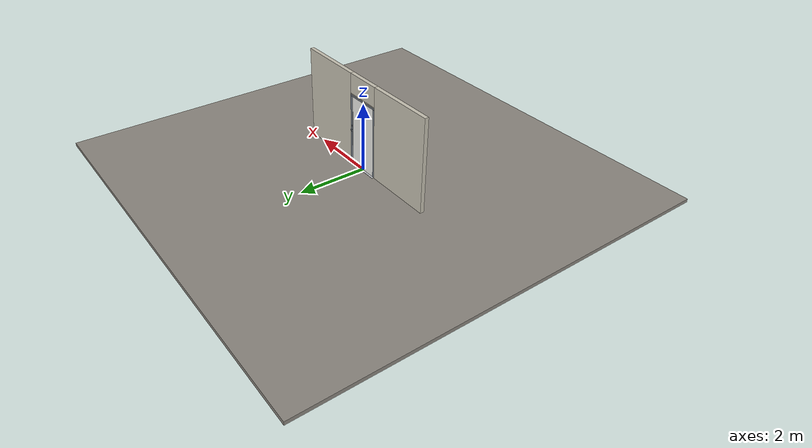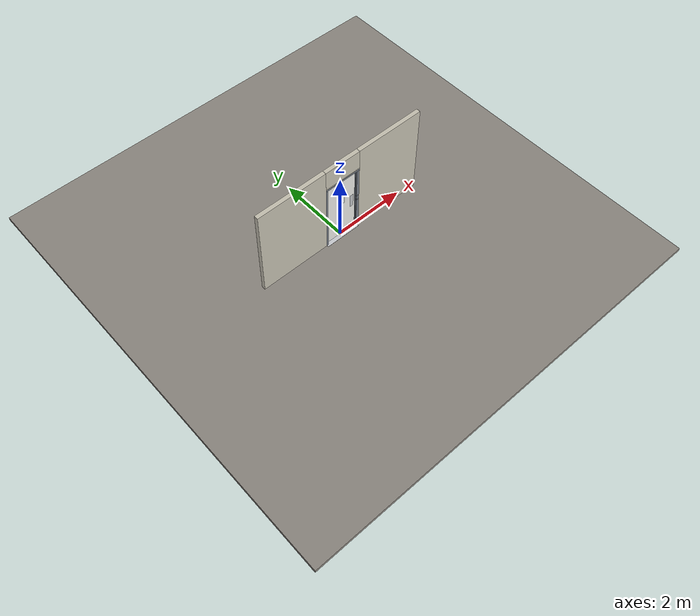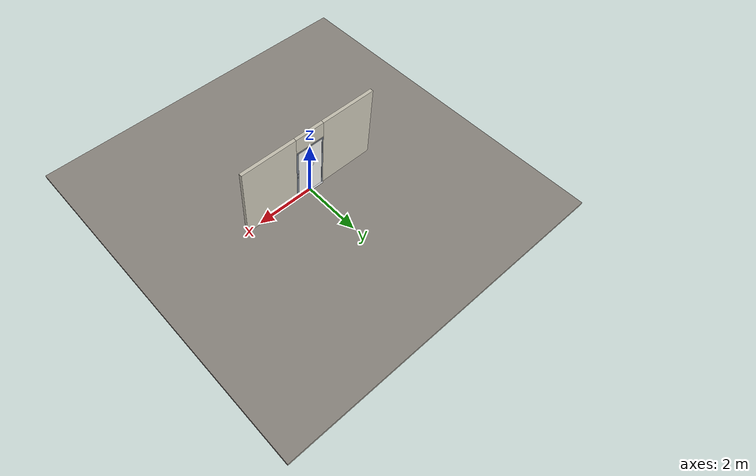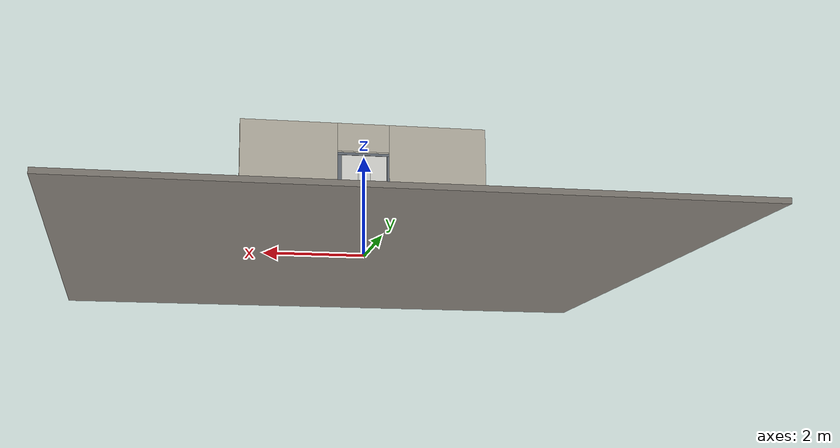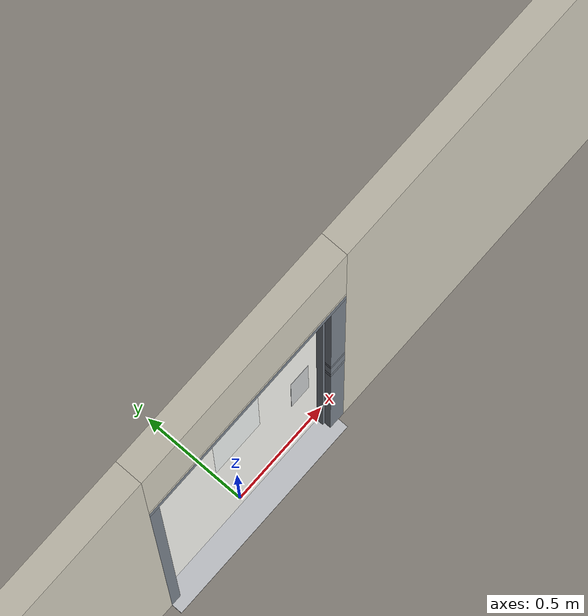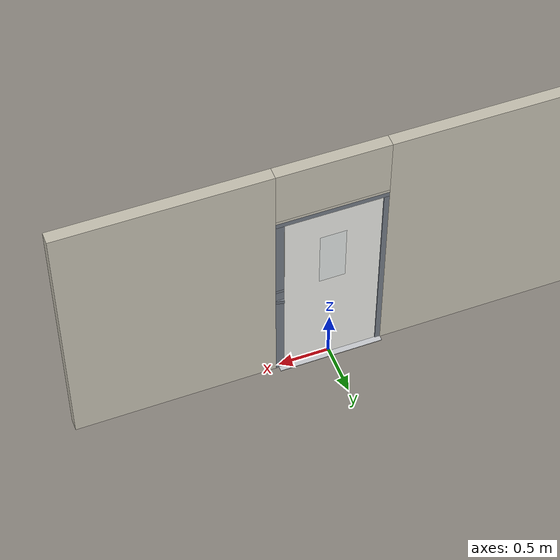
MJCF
<?xml version="1.0" ?>
<mujoco model="db0201_swing_single_minimal">
  <compiler angle="radian" meshdir="../../hardware" texturedir="../../textures" autolimits="true" inertiafromgeom="false"/>
  <option timestep="0.002" integrator="implicitfast" cone="elliptic" impratio="10" noslip_iterations="3">
    <flag multiccd="enable"/>
  </option>
  <size memory="16M"/>
  <default>
    <geom condim="4" solref="0.005 1" solimp="0.95 0.99 0.001"/>
    <joint solreflimit="0.005 1" solimplimit="0.95 0.99 0.001"/>
    <tendon solreflimit="0.005 1"/>
    <equality solref="0.002 1"/>
  </default>
  <visual>
    <headlight ambient="0.4 0.4 0.4" diffuse="0.7 0.7 0.7" specular="0.2 0.2 0.2"/>
    <quality shadowsize="4096"/>
    <map znear="0.01" zfar="60"/>
  </visual>
  <asset>
    <material name="mat_floor" rgba="0.55 0.53 0.5 1" specular="0.2" shininess="0.15" reflectance="0"/>
    <material name="mat_wall" rgba="0.78 0.76 0.7 1" specular="0.2" shininess="0.1" reflectance="0"/>
    <material name="mat_leaf" rgba="0.93 0.93 0.91 1" specular="0.23" shininess="0.6" reflectance="0.02"/>
    <material name="mat_glass" rgba="0.85 0.92 0.95 0.25" specular="0.2" shininess="0.95" reflectance="0.1"/>
    <material name="mat_hinge" rgba="0.65 0.66 0.68 1" specular="0.74" shininess="0.5" reflectance="0.36"/>
    <material name="mat_op_stainless" rgba="0.75 0.76 0.77 1" specular="0.8" shininess="0.65" reflectance="0.4"/>
    <material name="mat_bolt" rgba="0.75 0.76 0.77 1" specular="0.8" shininess="0.65" reflectance="0.4"/>
    <material name="mat_deadbolt" rgba="0.85 0.66 0.3 1" specular="0.8" shininess="0.75" reflectance="0.4"/>
    <material name="mat_frame" rgba="0.45 0.48 0.52 1" specular="0.32" shininess="0.6" reflectance="0.08"/>
    <material name="mat_seal" rgba="0.1 0.1 0.1 1" specular="0.2" shininess="0.1" reflectance="0"/>
    <material name="mat_threshold" rgba="0.8 0.81 0.83 1" specular="0.8" shininess="0.6" reflectance="0.4"/>
    <material name="mat_closer" rgba="0.22 0.17 0.13 1" specular="0.8" shininess="0.6" reflectance="0.4"/>
    <texture name="skybox" type="skybox" builtin="gradient" rgb1="0.6 0.7 0.85" rgb2="0.9 0.92 0.95" width="256" height="256"/>
  </asset>
  <worldbody>
    <light name="sun" pos="1.5 -2.5 4" dir="-0.3 0.5 -0.8" directional="true" diffuse="0.8 0.8 0.8" specular="0.3 0.3 0.3" castshadow="true"/>
    <light name="fill" pos="-1.5 2.5 3" dir="0.3 -0.5 -0.7" directional="true" diffuse="0.35 0.35 0.4" castshadow="false"/>
    <camera name="robot_view" pos="0 -2.570688 1.734312" xyaxes="1 0 0 0 0.26963 0.962964" fovy="52"/>
    <camera name="far_view" pos="0 2.513687 1.734312" xyaxes="-1 0 0 0 -0.26963 0.962964" fovy="52"/>
    <camera name="iso" pos="1.932062 -2.163938 2.141063" xyaxes="0.741536 0.670913 0 -0.242917 0.268487 0.932151" fovy="46"/>
    <camera name="detail_handle" pos="0.5335 -0.8285 1.296" xyaxes="0.97561 0.219512 0 -0.070934 0.315262 0.94635" fovy="38"/>
    <geom name="floor" type="box" size="6 6 0.05" pos="0 0 -0.05" material="mat_floor" group="0" contype="1" conaffinity="1" friction="0.8 0.005 0.0001" density="2400"/>
    <geom name="wall_left" type="box" size="0.99475 0.0575 1.35" pos="-1.50525 -0.0285 1.35" material="mat_wall" group="0" contype="1" conaffinity="1" friction="0.6 0.005 0.0001" density="800"/>
    <geom name="wall_right" type="box" size="0.97975 0.0575 1.35" pos="1.52025 -0.0285 1.35" material="mat_wall" group="0" contype="1" conaffinity="1" friction="0.6 0.005 0.0001" density="800"/>
    <geom name="wall_header" type="box" size="0.5255 0.0575 0.2875" pos="0.015 -0.0285 2.4125" material="mat_wall" group="0" contype="1" conaffinity="1" friction="0.6 0.005 0.0001" density="800"/>
    <geom name="jamb_hinge" type="box" size="0.025 0.0575 1.0225" pos="-0.4855 -0.0285 1.0225" material="mat_frame" group="0" contype="1" conaffinity="1" friction="0.6 0.005 0.0001" density="300"/>
    <geom name="strike_1016_wall_n" type="box" size="0.04 0.03925 0.019" pos="0.5005 -0.04675 1.016" material="mat_frame" group="0" contype="1" conaffinity="1" friction="0.6 0.005 0.0001" density="300"/>
    <geom name="strike_1016_wall_p" type="box" size="0.04 0.008 0.019" pos="0.5005 0.0155 1.016" material="mat_frame" group="0" contype="1" conaffinity="1" friction="0.6 0.005 0.0001" density="300"/>
    <geom name="strike_1016_ramp" type="box" size="0.04 0.015403 0.019" pos="0.502954 0.029411 1.016" quat="0.993439 0 0 -0.114365" material="mat_frame" group="0" contype="1" conaffinity="1" friction="0.12 0.005 0.0001" density="300"/>
    <geom name="strike_1016_ramp_n" type="box" size="0.04 0.015403 0.019" pos="0.502954 -0.017411 1.016" quat="0.993439 0 0 0.114365" material="mat_frame" group="0" contype="1" conaffinity="1" friction="0.12 0.005 0.0001" density="300"/>
    <geom name="strike_1016_back" type="box" size="0.035 0.0075 0.019" pos="0.5055 0 1.016" material="mat_frame" group="0" contype="1" conaffinity="1" friction="0.6 0.005 0.0001" density="300"/>
    <geom name="strike_1156_wall_n" type="box" size="0.04 0.03825 0.0155" pos="0.5005 -0.04775 1.156" material="mat_frame" group="0" contype="1" conaffinity="1" friction="0.6 0.005 0.0001" density="300"/>
    <geom name="strike_1156_wall_p" type="box" size="0.04 0.00975 0.0155" pos="0.5005 0.01925 1.156" material="mat_frame" group="0" contype="1" conaffinity="1" friction="0.6 0.005 0.0001" density="300"/>
    <geom name="strike_1156_back" type="box" size="0.0253 0.0095 0.0155" pos="0.5152 0 1.156" material="mat_frame" group="0" contype="1" conaffinity="1" friction="0.6 0.005 0.0001" density="300"/>
    <geom name="jamb_strike_0" type="box" size="0.04 0.0575 0.4985" pos="0.5005 -0.0285 0.4985" material="mat_frame" group="0" contype="1" conaffinity="1" friction="0.6 0.005 0.0001" density="300"/>
    <geom name="jamb_strike_1" type="box" size="0.04 0.0575 0.05275" pos="0.5005 -0.0285 1.08775" material="mat_frame" group="0" contype="1" conaffinity="1" friction="0.6 0.005 0.0001" density="300"/>
    <geom name="jamb_strike_2" type="box" size="0.04 0.0575 0.43675" pos="0.5005 -0.0285 1.60825" material="mat_frame" group="0" contype="1" conaffinity="1" friction="0.6 0.005 0.0001" density="300"/>
    <geom name="jamb_head" type="box" size="0.5255 0.0575 0.025" pos="0.015 -0.0285 2.07" material="mat_frame" group="0" contype="1" conaffinity="1" friction="0.6 0.005 0.0001" density="300"/>
    <geom name="head_stud" type="box" size="0.5255 0.0575 0.015" pos="0.015 -0.0285 2.11" material="mat_wall" group="0" contype="1" conaffinity="1" friction="0.6 0.005 0.0001" density="500"/>
    <geom name="stop_hinge" type="box" size="0.0055 0.016 1.0225" pos="-0.455 -0.0385 1.0225" material="mat_frame" group="0" contype="1" conaffinity="1" friction="0.6 0.005 0.0001" density="300"/>
    <geom name="stop_strike" type="box" size="0.0055 0.016 1.0225" pos="0.455 -0.0385 1.0225" material="mat_frame" group="0" contype="1" conaffinity="1" friction="0.6 0.005 0.0001" density="300"/>
    <geom name="stop_head" type="box" size="0.4605 0.016 0.0055" pos="0 -0.0385 2.0395" material="mat_frame" group="0" contype="1" conaffinity="1" friction="0.6 0.005 0.0001" density="300"/>
    <geom name="threshold" type="box" size="0.5105 0.1075 0.004" pos="0 -0.0285 0.004" material="mat_threshold" group="0" contype="1" conaffinity="1" friction="0.6 0.005 0.0001" density="2700"/>
    <site name="approach_point" pos="0 -1.5 0" quat="1 0 0 0" size="0.05" rgba="0.2 0.9 0.2 0.5" group="4"/>
    <site name="goal_point" pos="0 1.5 0" quat="1 0 0 0" size="0.05" rgba="0.2 0.9 0.2 0.5" group="4"/>
    <site name="door_plane_center" pos="0 0 1.0225" quat="1 0 0 0" size="0.02" rgba="0.2 0.9 0.2 0.5" group="4"/>
    <body name="leaf" pos="-0.4605 0 0">
      <inertial pos="0.463299 -0.000214 1.024968" mass="62.012378" quat="0.50024 0.499705 -0.500292 0.499762" diaginertia="4.35812674 21.154417637 25.492133452"/>
      <joint name="leaf_hinge" type="hinge" axis="0 0 1" pos="0.003 0.029 0" limited="true" range="0 1.745329" solreflimit="0.02 1" damping="12.25611" frictionloss="2.239149" stiffness="15.8391" springref="-1.756413" armature="0.02"/>
      <geom name="leaf_slab" type="box" size="0.457 0.022 1.016" pos="0.46 0 1.025" material="mat_leaf" group="0" contype="1" conaffinity="1" friction="0.4 0.005 0.0001" density="1"/>
      <geom name="leaf_glass_0" type="box" size="0.125 0.0228 0.3048" pos="0.46 0 1.4314" material="mat_glass" group="1" contype="0" conaffinity="0" density="1"/>
      <geom name="leaf_push_plate_n" type="box" size="0.05 0.0008 0.2" pos="0.812 -0.0228 1.016" material="mat_op_stainless" group="1" contype="0" conaffinity="0" density="7900"/>
      <site name="leaf_push_plate_push_n" pos="0.812 -0.022 1.016" quat="1 0 0 0" size="0.012" rgba="0.2 0.9 0.2 0.5" group="4"/>
      <site name="leaf_edge_mid" pos="0.917 0 1.016" quat="1 0 0 0" size="0.02" rgba="0.2 0.9 0.2 0.5" group="4"/>
      <body name="leaf_latch_bolt" pos="0.917 0 1.016">
        <inertial pos="-0.012 0 0" mass="0.030762" quat="0 0 0.707107 0.707107" diaginertia="0.000000526 0.000002949 0.000002949"/>
        <joint name="leaf_latch_bolt_slide" type="slide" axis="-1 0 0" limited="true" range="0 0.006" damping="2" frictionloss="0.3" stiffness="3000" springref="-0.004" armature="0.1"/>
        <geom name="leaf_latch_bolt_capsule" type="capsule" size="0.006 0.012" pos="-0.012 0 0" quat="0.707107 0 0.707107 0" material="mat_bolt" group="0" contype="1" conaffinity="1" friction="0.2 0.005 0.0001" density="8500"/>
      </body>
    </body>
  </worldbody>
  <sensor>
    <jointpos name="leaf_hinge_pos" joint="leaf_hinge"/>
    <jointvel name="leaf_hinge_vel" joint="leaf_hinge"/>
    <jointpos name="leaf_latch_bolt_slide_pos" joint="leaf_latch_bolt_slide"/>
    <jointvel name="leaf_latch_bolt_slide_vel" joint="leaf_latch_bolt_slide"/>
  </sensor>
</mujoco>
